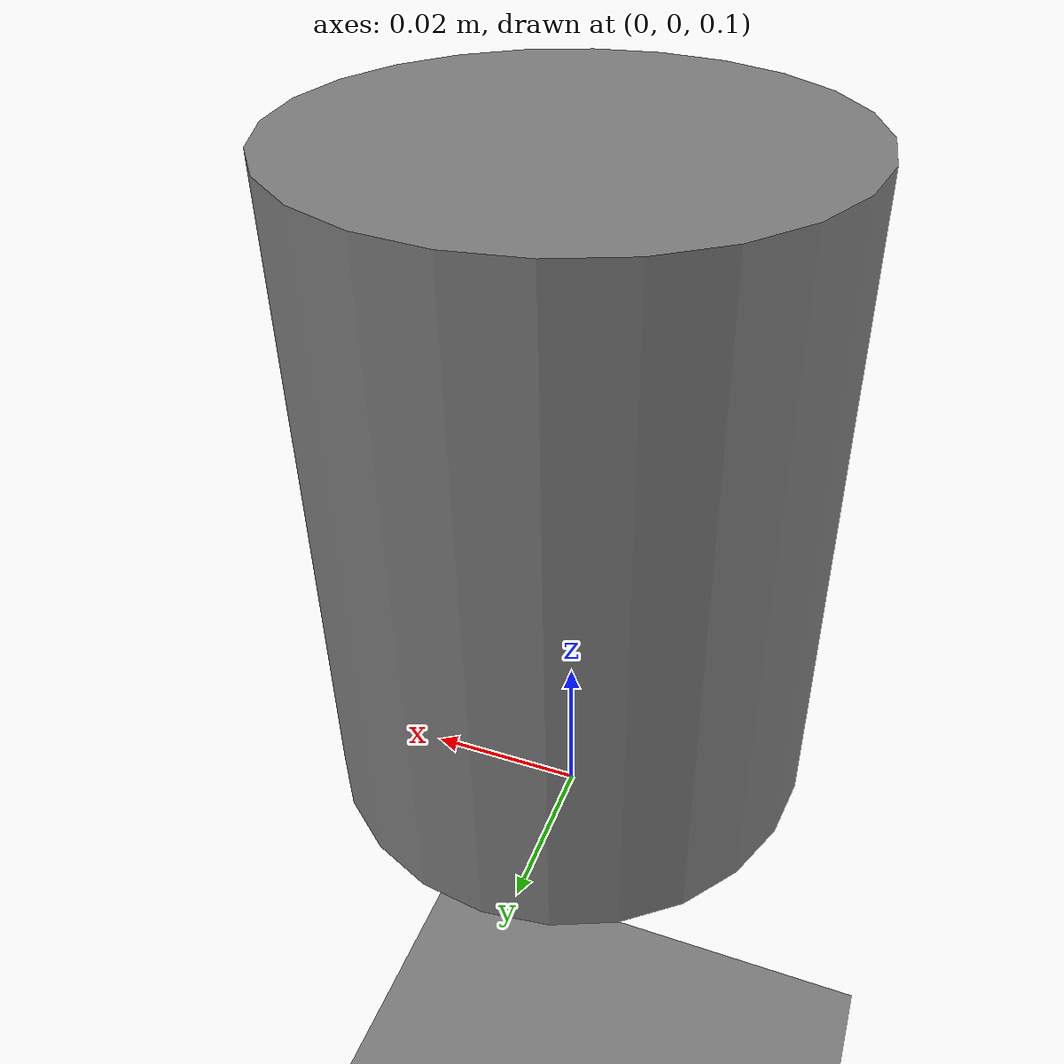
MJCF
<?xml version="1.0" encoding="utf-8"?>
<!-- Heavier object: total mass near upper bound for grippers; may trigger mass-property attention -->
<mujoco model="spine_bridge_warnings">
  <compiler angle="radian"/>
  <option timestep="0.002" iterations="50"/>
  <worldbody>
    <geom name="ground" type="plane" size="0.5 0.5 0.1"/>
    <light pos="0 0 1" dir="0 0 -1" directional="true"/>
    <body name="heavy_link" pos="0 0 0.15">
      <freejoint name="obj_free"/>
      <geom name="link_geom" type="cylinder" size="0.03 0.04" mass="3.0"/>
    </body>
  </worldbody>
</mujoco>
